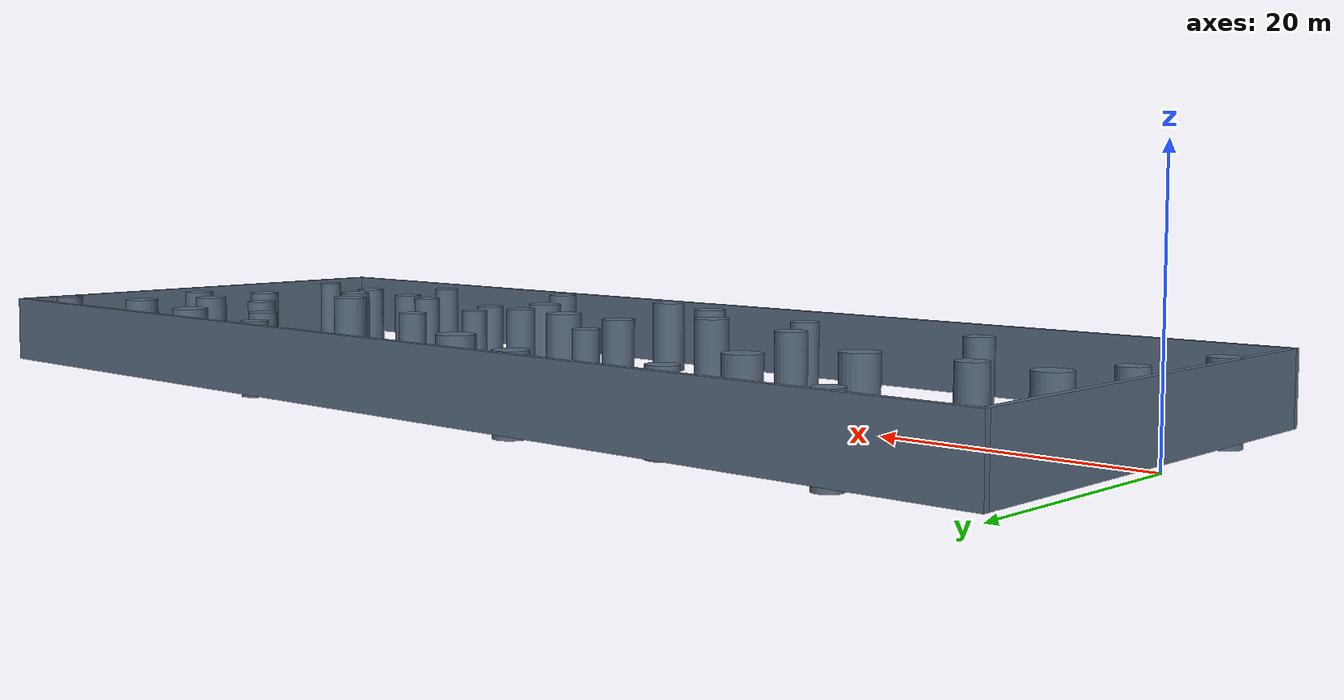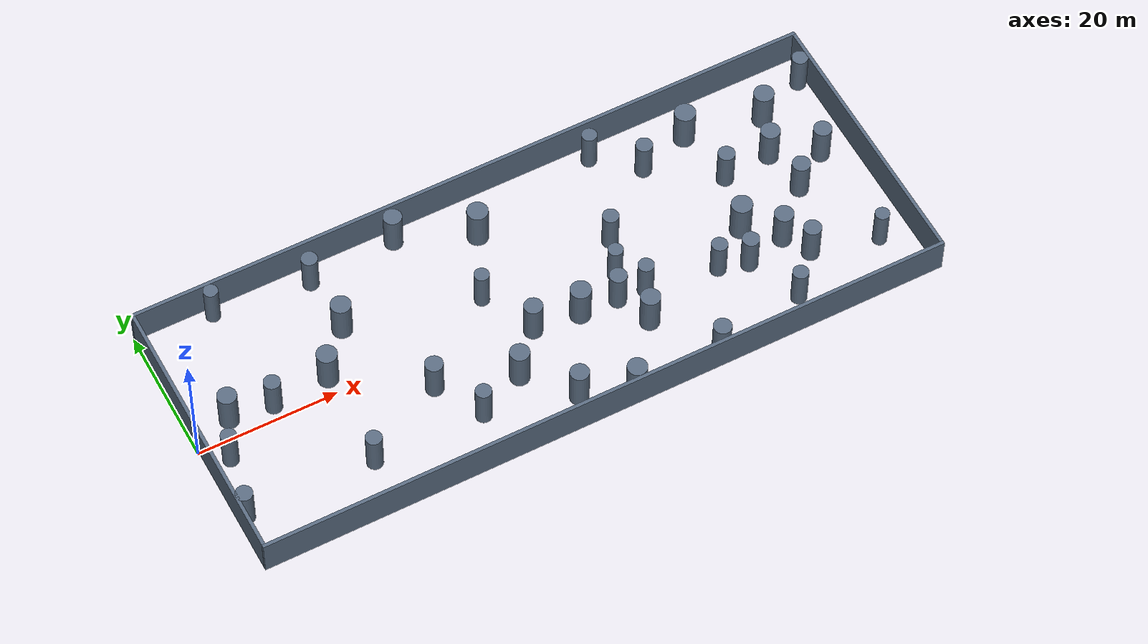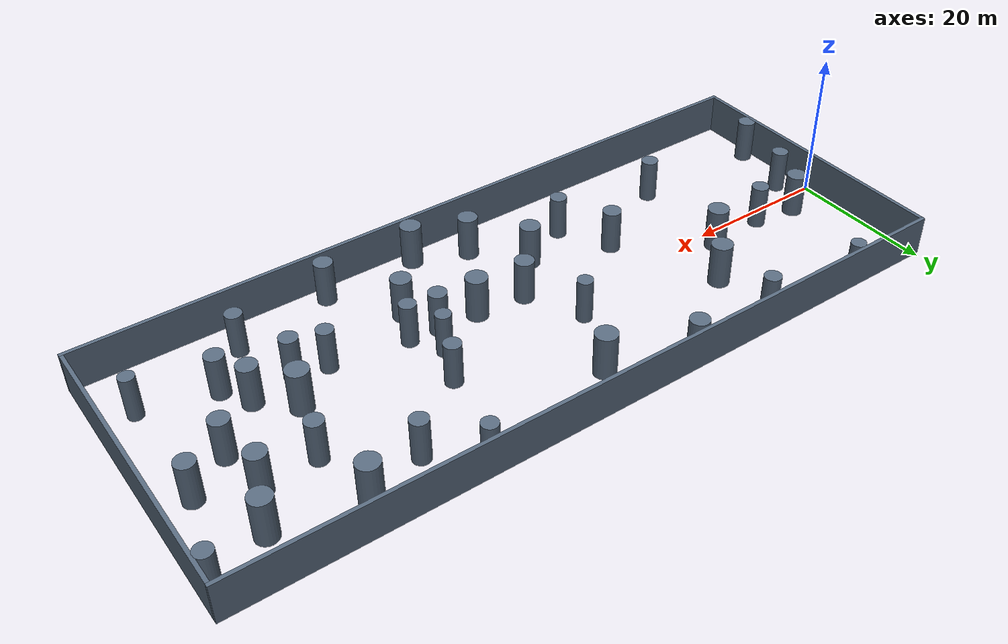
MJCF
<mujoco model="S01">
  <compiler angle="radian" />
  <include file="boundary.xml" />
  <custom>
    <text name="scene_metadata" data="{&quot;id&quot;: &quot;S01&quot;, &quot;difficulty&quot;: &quot;easy&quot;, &quot;title&quot;: &quot;SANDO easy static forest&quot;, &quot;source&quot;: &quot;SANDO&quot;, &quot;dynamic&quot;: false, &quot;benchmark_role&quot;: &quot;primary&quot;, &quot;review_duration_s&quot;: 3.0, &quot;layout_policy&quot;: &quot;direct conversion of pinned SANDO forest geometry; no route reservation&quot;, &quot;source_provenance&quot;: {&quot;world_file&quot;: &quot;research_dev/sando/docker/dev-workspace/upstream-93b2eed/worlds/easy_forest.world&quot;, &quot;world_sha256&quot;: &quot;3734f825cb1b9a48dc320e9b377aa63449ed3ae52b7a699615d855deab154e22&quot;, &quot;x_translation_m&quot;: -3.0, &quot;published_density&quot;: 0.05, &quot;cylinder_count&quot;: 41}, &quot;topology_acceptance&quot;: {&quot;require_direct_route_blocked&quot;: true, &quot;require_reachable&quot;: true, &quot;max_full_length_straight_lanes&quot;: 0, &quot;max_clear_straight_run_m&quot;: null}, &quot;obstacle_metadata&quot;: [{&quot;role&quot;: &quot;sando_static_forest&quot;, &quot;source_name&quot;: &quot;0&quot;}, {&quot;role&quot;: &quot;sando_static_forest&quot;, &quot;source_name&quot;: &quot;1&quot;}, {&quot;role&quot;: &quot;sando_static_forest&quot;, &quot;source_name&quot;: &quot;2&quot;}, {&quot;role&quot;: &quot;sando_static_forest&quot;, &quot;source_name&quot;: &quot;3&quot;}, {&quot;role&quot;: &quot;sando_static_forest&quot;, &quot;source_name&quot;: &quot;4&quot;}, {&quot;role&quot;: &quot;sando_static_forest&quot;, &quot;source_name&quot;: &quot;5&quot;}, {&quot;role&quot;: &quot;sando_static_forest&quot;, &quot;source_name&quot;: &quot;6&quot;}, {&quot;role&quot;: &quot;sando_static_forest&quot;, &quot;source_name&quot;: &quot;7&quot;}, {&quot;role&quot;: &quot;sando_static_forest&quot;, &quot;source_name&quot;: &quot;8&quot;}, {&quot;role&quot;: &quot;sando_static_forest&quot;, &quot;source_name&quot;: &quot;9&quot;}, {&quot;role&quot;: &quot;sando_static_forest&quot;, &quot;source_name&quot;: &quot;10&quot;}, {&quot;role&quot;: &quot;sando_static_forest&quot;, &quot;source_name&quot;: &quot;11&quot;}, {&quot;role&quot;: &quot;sando_static_forest&quot;, &quot;source_name&quot;: &quot;12&quot;}, {&quot;role&quot;: &quot;sando_static_forest&quot;, &quot;source_name&quot;: &quot;13&quot;}, {&quot;role&quot;: &quot;sando_static_forest&quot;, &quot;source_name&quot;: &quot;14&quot;}, {&quot;role&quot;: &quot;sando_static_forest&quot;, &quot;source_name&quot;: &quot;15&quot;}, {&quot;role&quot;: &quot;sando_static_forest&quot;, &quot;source_name&quot;: &quot;16&quot;}, {&quot;role&quot;: &quot;sando_static_forest&quot;, &quot;source_name&quot;: &quot;17&quot;}, {&quot;role&quot;: &quot;sando_static_forest&quot;, &quot;source_name&quot;: &quot;18&quot;}, {&quot;role&quot;: &quot;sando_static_forest&quot;, &quot;source_name&quot;: &quot;19&quot;}, {&quot;role&quot;: &quot;sando_static_forest&quot;, &quot;source_name&quot;: &quot;20&quot;}, {&quot;role&quot;: &quot;sando_static_forest&quot;, &quot;source_name&quot;: &quot;21&quot;}, {&quot;role&quot;: &quot;sando_static_forest&quot;, &quot;source_name&quot;: &quot;22&quot;}, {&quot;role&quot;: &quot;sando_static_forest&quot;, &quot;source_name&quot;: &quot;23&quot;}, {&quot;role&quot;: &quot;sando_static_forest&quot;, &quot;source_name&quot;: &quot;24&quot;}, {&quot;role&quot;: &quot;sando_static_forest&quot;, &quot;source_name&quot;: &quot;25&quot;}, {&quot;role&quot;: &quot;sando_static_forest&quot;, &quot;source_name&quot;: &quot;26&quot;}, {&quot;role&quot;: &quot;sando_static_forest&quot;, &quot;source_name&quot;: &quot;27&quot;}, {&quot;role&quot;: &quot;sando_static_forest&quot;, &quot;source_name&quot;: &quot;28&quot;}, {&quot;role&quot;: &quot;sando_static_forest&quot;, &quot;source_name&quot;: &quot;29&quot;}, {&quot;role&quot;: &quot;sando_static_forest&quot;, &quot;source_name&quot;: &quot;30&quot;}, {&quot;role&quot;: &quot;sando_static_forest&quot;, &quot;source_name&quot;: &quot;31&quot;}, {&quot;role&quot;: &quot;sando_static_forest&quot;, &quot;source_name&quot;: &quot;32&quot;}, {&quot;role&quot;: &quot;sando_static_forest&quot;, &quot;source_name&quot;: &quot;33&quot;}, {&quot;role&quot;: &quot;sando_static_forest&quot;, &quot;source_name&quot;: &quot;34&quot;}, {&quot;role&quot;: &quot;sando_static_forest&quot;, &quot;source_name&quot;: &quot;35&quot;}, {&quot;role&quot;: &quot;sando_static_forest&quot;, &quot;source_name&quot;: &quot;36&quot;}, {&quot;role&quot;: &quot;sando_static_forest&quot;, &quot;source_name&quot;: &quot;37&quot;}, {&quot;role&quot;: &quot;sando_static_forest&quot;, &quot;source_name&quot;: &quot;38&quot;}, {&quot;role&quot;: &quot;sando_static_forest&quot;, &quot;source_name&quot;: &quot;39&quot;}, {&quot;role&quot;: &quot;sando_static_forest&quot;, &quot;source_name&quot;: &quot;40&quot;}]}" />
  </custom>
  <worldbody>
    <body name="obstacle_4" mocap="true" pos="42.276200000000003 -8.9784299999999995 3" user="0 0 0 0 0 0">
      <geom name="obstacle_geom_4" type="cylinder" size="1.3789800000000001 3" rgba="0.35 0.42 0.5 1" />
    </body>
    <body name="obstacle_5" mocap="true" pos="77.697299999999998 -7.3944700000000001 3" user="0 0 0 0 0 0">
      <geom name="obstacle_geom_5" type="cylinder" size="1.2024699999999999 3" rgba="0.35 0.42 0.5 1" />
    </body>
    <body name="obstacle_6" mocap="true" pos="89.757000000000005 0.17536599999999999 3" user="0 0 0 0 0 0">
      <geom name="obstacle_geom_6" type="cylinder" size="1.29169 3" rgba="0.35 0.42 0.5 1" />
    </body>
    <body name="obstacle_7" mocap="true" pos="61.5107 -9.2921899999999997 3" user="0 0 0 0 0 0">
      <geom name="obstacle_geom_7" type="cylinder" size="1.3778999999999999 3" rgba="0.35 0.42 0.5 1" />
    </body>
    <body name="obstacle_8" mocap="true" pos="80.096400000000003 14.8871 3" user="0 0 0 0 0 0">
      <geom name="obstacle_geom_8" type="cylinder" size="1.49139 3" rgba="0.35 0.42 0.5 1" />
    </body>
    <body name="obstacle_9" mocap="true" pos="88.795100000000005 6.8571099999999996 3" user="0 0 0 0 0 0">
      <geom name="obstacle_geom_9" type="cylinder" size="1.3649199999999999 3" rgba="0.35 0.42 0.5 1" />
    </body>
    <body name="obstacle_10" mocap="true" pos="43.555500000000002 4.2025399999999999 3" user="0 0 0 0 0 0">
      <geom name="obstacle_geom_10" type="cylinder" size="1.0503499999999999 3" rgba="0.35 0.42 0.5 1" />
    </body>
    <body name="obstacle_11" mocap="true" pos="47.769199999999998 13.528700000000001 3" user="0 0 0 0 0 0">
      <geom name="obstacle_geom_11" type="cylinder" size="1.4833000000000001 3" rgba="0.35 0.42 0.5 1" />
    </body>
    <body name="obstacle_12" mocap="true" pos="54.7333 -18.075199999999999 3" user="0 0 0 0 0 0">
      <geom name="obstacle_geom_12" type="cylinder" size="1.4025099999999999 3" rgba="0.35 0.42 0.5 1" />
    </body>
    <body name="obstacle_13" mocap="true" pos="81.705299999999994 6.3227599999999997 3" user="0 0 0 0 0 0">
      <geom name="obstacle_geom_13" type="cylinder" size="1.1994100000000001 3" rgba="0.35 0.42 0.5 1" />
    </body>
    <body name="obstacle_14" mocap="true" pos="85.843599999999995 -9.6049900000000008 3" user="0 0 0 0 0 0">
      <geom name="obstacle_geom_14" type="cylinder" size="1.2467900000000001 3" rgba="0.35 0.42 0.5 1" />
    </body>
    <body name="obstacle_15" mocap="true" pos="19.993500000000001 2.50664 3" user="0 0 0 0 0 0">
      <geom name="obstacle_geom_15" type="cylinder" size="1.4352400000000001 3" rgba="0.35 0.42 0.5 1" />
    </body>
    <body name="obstacle_16" mocap="true" pos="79.418300000000002 -1.9268099999999999 3" user="0 0 0 0 0 0">
      <geom name="obstacle_geom_16" type="cylinder" size="1.48377 3" rgba="0.35 0.42 0.5 1" />
    </body>
    <body name="obstacle_17" mocap="true" pos="11.812799999999999 1.9317500000000001 3" user="0 0 0 0 0 0">
      <geom name="obstacle_geom_17" type="cylinder" size="1.1600299999999999 3" rgba="0.35 0.42 0.5 1" />
    </body>
    <body name="obstacle_18" mocap="true" pos="95.202299999999994 3.8645700000000001 3" user="0 0 0 0 0 0">
      <geom name="obstacle_geom_18" type="cylinder" size="1.27372 3" rgba="0.35 0.42 0.5 1" />
    </body>
    <body name="obstacle_19" mocap="true" pos="59.393300000000004 -4.32254 3" user="0 0 0 0 0 0">
      <geom name="obstacle_geom_19" type="cylinder" size="1.2224900000000001 3" rgba="0.35 0.42 0.5 1" />
    </body>
    <body name="obstacle_20" mocap="true" pos="19.650500000000001 -11.8133 3" user="0 0 0 0 0 0">
      <geom name="obstacle_geom_20" type="cylinder" size="1.14516 3" rgba="0.35 0.42 0.5 1" />
    </body>
    <body name="obstacle_21" mocap="true" pos="47.715400000000002 -15.317299999999999 3" user="0 0 0 0 0 0">
      <geom name="obstacle_geom_21" type="cylinder" size="1.32833 3" rgba="0.35 0.42 0.5 1" />
    </body>
    <body name="obstacle_22" mocap="true" pos="91.120099999999994 12.713200000000001 3" user="0 0 0 0 0 0">
      <geom name="obstacle_geom_22" type="cylinder" size="1.4383900000000001 3" rgba="0.35 0.42 0.5 1" />
    </body>
    <body name="obstacle_23" mocap="true" pos="53.941299999999998 -4.0304099999999998 3" user="0 0 0 0 0 0">
      <geom name="obstacle_geom_23" type="cylinder" size="1.4615400000000001 3" rgba="0.35 0.42 0.5 1" />
    </body>
    <body name="obstacle_24" mocap="true" pos="98.495999999999995 15.7288 3" user="0 0 0 0 0 0">
      <geom name="obstacle_geom_24" type="cylinder" size="1.1378200000000001 3" rgba="0.35 0.42 0.5 1" />
    </body>
    <body name="obstacle_25" mocap="true" pos="61.043499999999995 -0.51400400000000002 3" user="0 0 0 0 0 0">
      <geom name="obstacle_geom_25" type="cylinder" size="1.0411900000000001 3" rgba="0.35 0.42 0.5 1" />
    </body>
    <body name="obstacle_26" mocap="true" pos="25.034600000000001 8.6009600000000006 3" user="0 0 0 0 0 0">
      <geom name="obstacle_geom_26" type="cylinder" size="1.4225399999999999 3" rgba="0.35 0.42 0.5 1" />
    </body>
    <body name="obstacle_27" mocap="true" pos="80.889799999999994 -15.088900000000001 3" user="0 0 0 0 0 0">
      <geom name="obstacle_geom_27" type="cylinder" size="1.1102300000000001 3" rgba="0.35 0.42 0.5 1" />
    </body>
    <body name="obstacle_28" mocap="true" pos="5.7502200000000006 2.7553700000000001 3" user="0 0 0 0 0 0">
      <geom name="obstacle_geom_28" type="cylinder" size="1.34884 3" rgba="0.35 0.42 0.5 1" />
    </body>
    <body name="obstacle_29" mocap="true" pos="67.601299999999995 -17.732700000000001 3" user="0 0 0 0 0 0">
      <geom name="obstacle_geom_29" type="cylinder" size="1.2670999999999999 3" rgba="0.35 0.42 0.5 1" />
    </body>
    <body name="obstacle_30" mocap="true" pos="37.352499999999999 17.968299999999999 3" user="0 0 0 0 0 0">
      <geom name="obstacle_geom_30" type="cylinder" size="1.3031699999999999 3" rgba="0.35 0.42 0.5 1" />
    </body>
    <body name="obstacle_31" mocap="true" pos="95.171099999999996 -11.9642 3" user="0 0 0 0 0 0">
      <geom name="obstacle_geom_31" type="cylinder" size="1.0108200000000001 3" rgba="0.35 0.42 0.5 1" />
    </body>
    <body name="obstacle_32" mocap="true" pos="3.3331799999999996 -2.8108200000000001 3" user="0 0 0 0 0 0">
      <geom name="obstacle_geom_32" type="cylinder" size="1.1052900000000001 3" rgba="0.35 0.42 0.5 1" />
    </body>
    <body name="obstacle_33" mocap="true" pos="35.367699999999999 -12.0648 3" user="0 0 0 0 0 0">
      <geom name="obstacle_geom_33" type="cylinder" size="1.1299600000000001 3" rgba="0.35 0.42 0.5 1" />
    </body>
    <body name="obstacle_34" mocap="true" pos="10.906000000000001 18.5337 3" user="0 0 0 0 0 0">
      <geom name="obstacle_geom_34" type="cylinder" size="1.01969 3" rgba="0.35 0.42 0.5 1" />
    </body>
    <body name="obstacle_35" mocap="true" pos="72.613600000000005 12.735099999999999 3" user="0 0 0 0 0 0">
      <geom name="obstacle_geom_35" type="cylinder" size="1.1792800000000001 3" rgba="0.35 0.42 0.5 1" />
    </body>
    <body name="obstacle_36" mocap="true" pos="66.889499999999998 17.649799999999999 3" user="0 0 0 0 0 0">
      <geom name="obstacle_geom_36" type="cylinder" size="1.0847100000000001 3" rgba="0.35 0.42 0.5 1" />
    </body>
    <body name="obstacle_37" mocap="true" pos="83.617999999999995 -5.8854899999999999 3" user="0 0 0 0 0 0">
      <geom name="obstacle_geom_37" type="cylinder" size="1.3381000000000001 3" rgba="0.35 0.42 0.5 1" />
    </body>
    <body name="obstacle_38" mocap="true" pos="47.236199999999997 -3.3698299999999999 3" user="0 0 0 0 0 0">
      <geom name="obstacle_geom_38" type="cylinder" size="1.2984 3" rgba="0.35 0.42 0.5 1" />
    </body>
    <body name="obstacle_39" mocap="true" pos="31.617600000000003 -5.3555799999999998 3" user="0 0 0 0 0 0">
      <geom name="obstacle_geom_39" type="cylinder" size="1.2543 3" rgba="0.35 0.42 0.5 1" />
    </body>
    <body name="obstacle_40" mocap="true" pos="73.613699999999994 -6.194 3" user="0 0 0 0 0 0">
      <geom name="obstacle_geom_40" type="cylinder" size="1.12547 3" rgba="0.35 0.42 0.5 1" />
    </body>
    <body name="obstacle_41" mocap="true" pos="24.605799999999999 17.0916 3" user="0 0 0 0 0 0">
      <geom name="obstacle_geom_41" type="cylinder" size="1.1404399999999999 3" rgba="0.35 0.42 0.5 1" />
    </body>
    <body name="obstacle_42" mocap="true" pos="63.068799999999996 4.5660699999999999 3" user="0 0 0 0 0 0">
      <geom name="obstacle_geom_42" type="cylinder" size="1.14394 3" rgba="0.35 0.42 0.5 1" />
    </body>
    <body name="obstacle_43" mocap="true" pos="1.3427899999999999 -11.572800000000001 3" user="0 0 0 0 0 0">
      <geom name="obstacle_geom_43" type="cylinder" size="1.19401 3" rgba="0.35 0.42 0.5 1" />
    </body>
    <body name="obstacle_44" mocap="true" pos="63.432199999999995 -4.5823200000000002 3" user="0 0 0 0 0 0">
      <geom name="obstacle_geom_44" type="cylinder" size="1.11971 3" rgba="0.35 0.42 0.5 1" />
    </body>
  </worldbody>
</mujoco>

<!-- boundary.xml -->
<mujoco model="navigation-boundary">
  <worldbody>
    <body name="obstacle_0" mocap="true" pos="50 -19.75 3.25" user="0 0 0 0 0 0">
      <geom name="obstacle_geom_0" type="box" size="50 0.25 2.75" rgba="0.35 0.42 0.5 1" />
    </body>
    <body name="obstacle_1" mocap="true" pos="50 19.75 3.25" user="0 0 0 0 0 0">
      <geom name="obstacle_geom_1" type="box" size="50 0.25 2.75" rgba="0.35 0.42 0.5 1" />
    </body>
    <body name="obstacle_2" mocap="true" pos="0.25 0 3.25" user="0 0 0 0 0 0">
      <geom name="obstacle_geom_2" type="box" size="0.25 19.5 2.75" rgba="0.35 0.42 0.5 1" />
    </body>
    <body name="obstacle_3" mocap="true" pos="99.75 0 3.25" user="0 0 0 0 0 0">
      <geom name="obstacle_geom_3" type="box" size="0.25 19.5 2.75" rgba="0.35 0.42 0.5 1" />
    </body>
  </worldbody>
</mujoco>
